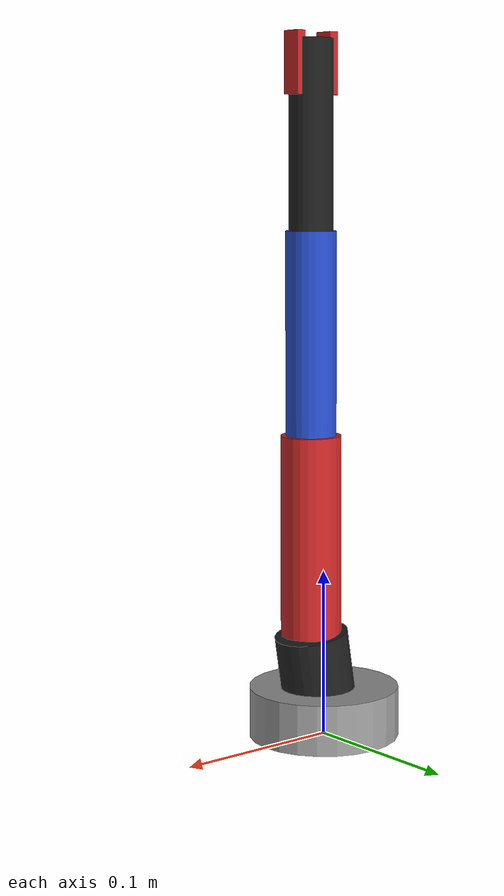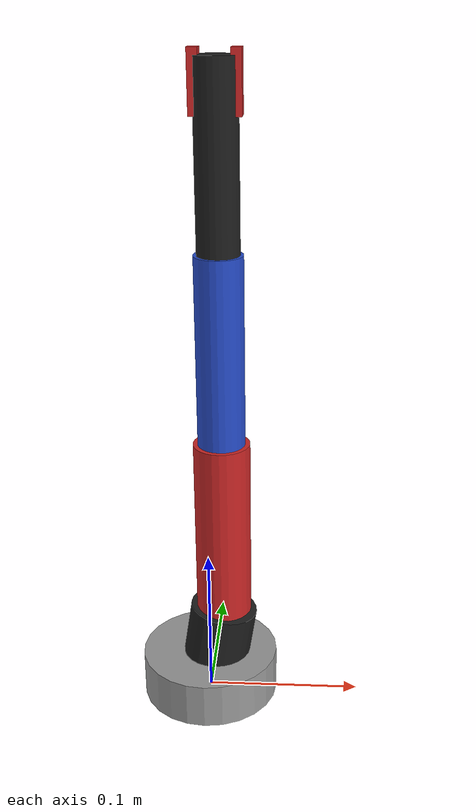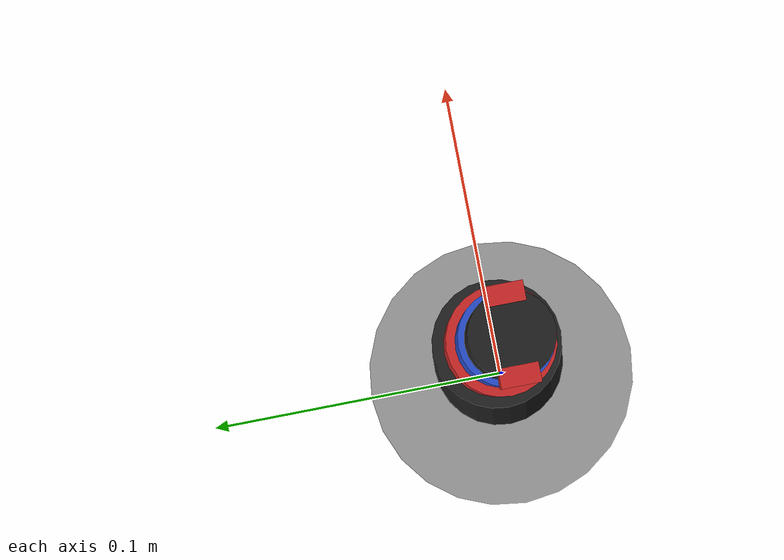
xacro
<?xml version="1.0"?>
<robot name="robotfun" xmlns:xacro="http://www.ros.org/wiki/xacro">

  <xacro:include filename="$(find robotfun_description)/urdf/common/materials.xacro"/>
  <xacro:include filename="$(find robotfun_description)/urdf/common/arm.macro.xacro"/>
  <xacro:include filename="$(find robotfun_description)/urdf/common/gripper.macro.xacro"/>

  <xacro:robotfun_arm/>

  <!-- gripper de prueba (móvil) en la zona de la mano -->
  <xacro:gripper_primitive parent="link_4">
    <origin xyz="0 0 0.078" rpy="0 0 0"/>
  </xacro:gripper_primitive>

</robot>

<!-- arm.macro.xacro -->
<robot xmlns:xacro="http://www.ros.org/wiki/xacro">

  <xacro:property name="lo" value="-1.5708"/>   <!-- −90° (HOME=0 ⇒ servo a 90°) -->
  <xacro:property name="hi" value="1.5708"/>

  <xacro:macro name="robotfun_arm">

    <link name="world"/>
    <joint name="base_joint" type="fixed">
      <origin xyz="0 0 0" rpy="0 0 0"/><parent link="world"/><child link="base_link"/>
    </joint>

    <!-- base_link (soporte fijo) -->
    <link name="base_link">
      <inertial><mass value="1.0"/>
        <inertia ixx="0.01" ixy="0" ixz="0" iyy="0.01" iyz="0" izz="0.01"/></inertial>
      <visual>
        <origin xyz="0 0 0.015" rpy="0 0 0"/>
        <geometry><cylinder radius="0.045" length="0.03"/></geometry>
        <material name="grey"/>
      </visual>
    </link>

    <!-- joint_1 yaw (en la base) -->
    <joint name="joint_1" type="revolute">
      <origin xyz="0 0 0" rpy="0 0 0"/><parent link="base_link"/><child link="link_1"/>
      <axis xyz="0 0 1"/><limit lower="${lo}" upper="${hi}" effort="10.0" velocity="1.5"/>
    </joint>

    <!-- link_1: columna de yaw hasta el hombro (L0 radial, L1 alto) -->
    <link name="link_1">
      <inertial><origin xyz="0.005 0 0.032"/><mass value="0.5"/>
        <inertia ixx="1e-3" ixy="0" ixz="0" iyy="1e-3" iyz="0" izz="1e-3"/></inertial>
      <visual>
        <origin xyz="0.005 0 0.032" rpy="0 0.156 0"/>
        <geometry><cylinder radius="0.022" length="0.064"/></geometry>
        <material name="black"/>
      </visual>
    </link>

    <!-- joint_2 hombro: offset radial L0=0.010, alto L1=0.063 -->
    <joint name="joint_2" type="revolute">
      <origin xyz="0.010 0 0.063" rpy="0 0 0"/><parent link="link_1"/><child link="link_2"/>
      <axis xyz="0 -1 0"/><limit lower="${lo}" upper="${hi}" effort="10.0" velocity="1.5"/>
    </joint>

    <!-- link_2: brazo L2=0.120 -->
    <link name="link_2">
      <inertial><origin xyz="0 0 0.06"/><mass value="0.4"/>
        <inertia ixx="1e-3" ixy="0" ixz="0" iyy="1e-3" iyz="0" izz="1e-3"/></inertial>
      <visual>
        <origin xyz="0 0 0.060" rpy="0 0 0"/>
        <geometry><cylinder radius="0.018" length="0.120"/></geometry>
        <material name="red"/>
      </visual>
    </link>

    <joint name="joint_3" type="revolute">
      <origin xyz="0 0 0.120" rpy="0 0 0"/><parent link="link_2"/><child link="link_3"/>
      <axis xyz="0 -1 0"/><limit lower="${lo}" upper="${hi}" effort="10.0" velocity="1.5"/>
    </joint>

    <!-- link_3: antebrazo A3=0.120 -->
    <link name="link_3">
      <inertial><origin xyz="0 0 0.06"/><mass value="0.3"/>
        <inertia ixx="8e-4" ixy="0" ixz="0" iyy="8e-4" iyz="0" izz="8e-4"/></inertial>
      <visual>
        <origin xyz="0 0 0.060" rpy="0 0 0"/>
        <geometry><cylinder radius="0.015" length="0.120"/></geometry>
        <material name="blue"/>
      </visual>
    </link>

    <joint name="joint_4" type="revolute">
      <origin xyz="0 0 0.120" rpy="0 0 0"/><parent link="link_3"/><child link="link_4"/>
      <axis xyz="0 -1 0"/><limit lower="${lo}" upper="${hi}" effort="10.0" velocity="1.5"/>
    </joint>

    <!-- link_4: mano HAND=0.11 (muñeca → punta) -->
    <link name="link_4">
      <inertial><origin xyz="0 0 0.055"/><mass value="0.2"/>
        <inertia ixx="5e-4" ixy="0" ixz="0" iyy="5e-4" iyz="0" izz="5e-4"/></inertial>
      <visual>
        <origin xyz="0 0 0.055" rpy="0 0 0"/>
        <geometry><cylinder radius="0.013" length="0.110"/></geometry>
        <material name="black"/>
      </visual>
    </link>

    <!-- tool0 = TCP (punta del gripper). Solo frame, sin cubo. -->
    <joint name="tool_fixed" type="fixed">
      <origin xyz="0 0 0.110" rpy="0 0 0"/><parent link="link_4"/><child link="tool0"/>
    </joint>
    <link name="tool0"/>

  </xacro:macro>
</robot>

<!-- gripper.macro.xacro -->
<robot xmlns:xacro="http://www.ros.org/wiki/xacro">

  <!-- ===== PRIMITIVO (móvil) ===== -->
  <xacro:macro name="gripper_primitive" params="parent *origin">
    <joint name="gripper" type="revolute">
      <xacro:insert_block name="origin"/>
      <parent link="${parent}"/><child link="gripper_finger_left"/>
      <axis xyz="0 1 0"/>
      <limit effort="5.0" lower="0.0" upper="0.6" velocity="2.0"/>
    </joint>
    <link name="gripper_finger_left">
      <inertial><mass value="0.01"/>
        <inertia ixx="1e-6" ixy="0" ixz="0" iyy="1e-6" iyz="0" izz="1e-6"/></inertial>
      <visual>
        <origin xyz="0.012 0 0.018" rpy="0 0 0"/>
        <geometry><box size="0.006 0.012 0.036"/></geometry>
        <material name="red"/>
      </visual>
    </link>
    <joint name="gripper_right" type="revolute">
      <xacro:insert_block name="origin"/>
      <parent link="${parent}"/><child link="gripper_finger_right"/>
      <axis xyz="0 1 0"/>
      <limit effort="5.0" lower="-0.6" upper="0.0" velocity="2.0"/>
      <mimic joint="gripper" multiplier="-1.0"/>
    </joint>
    <link name="gripper_finger_right">
      <inertial><mass value="0.01"/>
        <inertia ixx="1e-6" ixy="0" ixz="0" iyy="1e-6" iyz="0" izz="1e-6"/></inertial>
      <visual>
        <origin xyz="-0.012 0 0.018" rpy="0 0 0"/>
        <geometry><box size="0.006 0.012 0.036"/></geometry>
        <material name="red"/>
      </visual>
    </link>
  </xacro:macro>

</robot>
